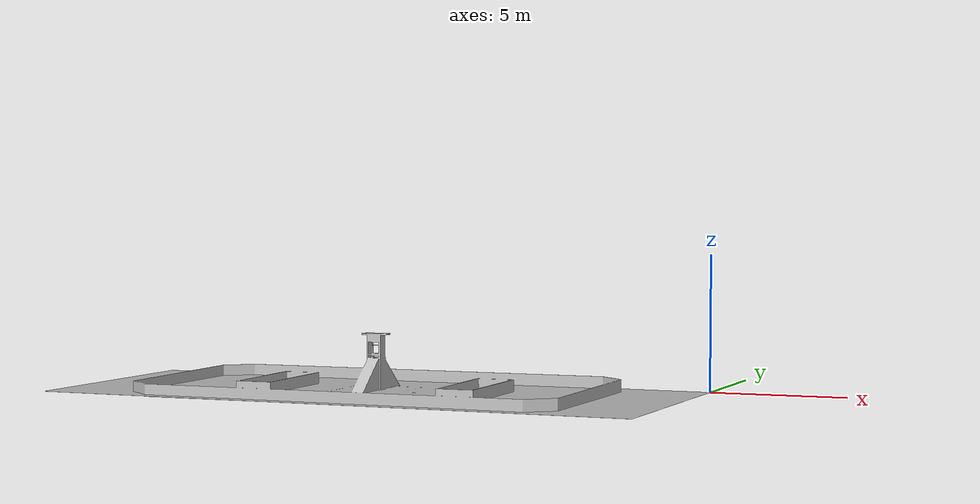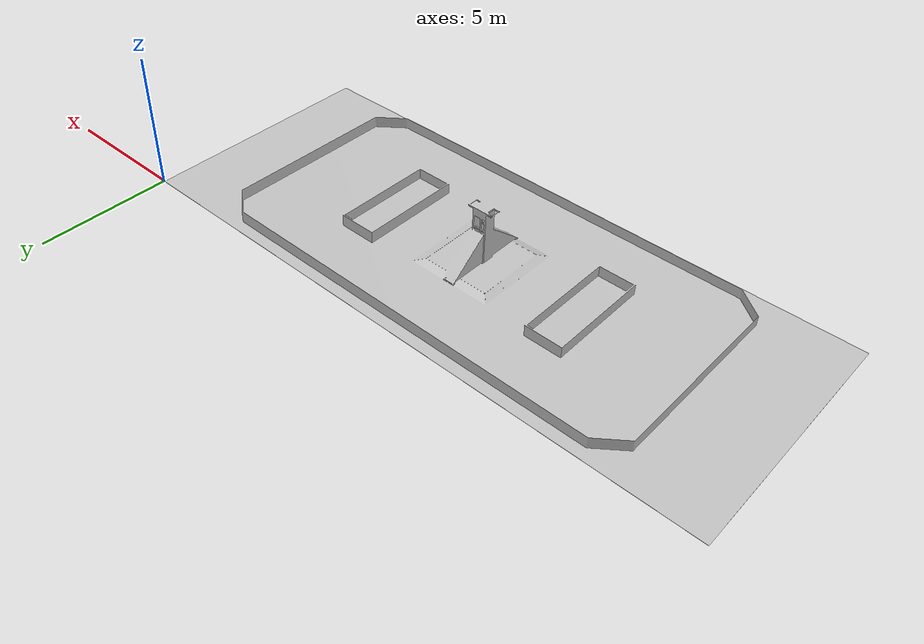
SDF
<?xml version="1.0" encoding="utf-8"?>
<sdf version="1.5">
  <model name="2018Field">
    <pose>0 0 0.00381000000000015 0 0 0</pose>
    <plugin name="clock" filename="libclock.so">
      <topic>/gazebo/frc/time</topic>
    </plugin>
    <link name="Field">
      <gravity>1</gravity>
      <self_collide>0</self_collide>
      <pose>-11.2322148764387 -4.57182951394293 0.158615289509543 1.56616420551451 0.00295731020805817 3.13003278368261</pose>
      <must_be_base_link>1</must_be_base_link>
      <velocity_decay>
        <linear>0</linear>
        <angular>0</angular>
      </velocity_decay>
      <inertial>
        <mass>1421.0362879402</mass>
        <pose>0 0 0 0 0 0</pose>
        <inertia>
          <ixx>9621.06411442907</ixx>
          <ixy>76.8615245699854</ixy>
          <ixz>201.31448744861</ixz>
          <iyy>32419.3172812761</iyy>
          <iyz>42.3346546040125</iyz>
          <izz>23187.0114779818</izz>
        </inertia>
      </inertial>
      <collision name="Field_collision">
        <pose>0.0367238764719841 -0.128865238216421 0.0239777029840934 0 0 0</pose>
        <geometry>
          <mesh>
            <scale>1 1 1</scale>
            <uri>model://2018Field/meshes/Field_col.STL</uri>
          </mesh>
        </geometry>
        <surface>
          <contact>
            <ode />
          </contact>
          <friction>
            <ode>
              <mu>1</mu>
              <mu2>1</mu2>
            </ode>
          </friction>
        </surface>
      </collision>
      <visual name="Field_visual">
        <pose>0.0367238764719841 -0.128865238216421 0.0239777029840934 0 0 0</pose>
        <material>
          <ambient>0.752941176470588 0.752941176470588 0.752941176470588 1</ambient>
          <diffuse>0.752941176470588 0.752941176470588 0.752941176470588 1</diffuse>
        </material>
        <geometry>
          <mesh>
            <scale>1 1 1</scale>
            <uri>model://2018Field/meshes/Field.STL</uri>
          </mesh>
        </geometry>
      </visual>
    </link>
    <joint name="Field-World" type="fixed">
      <parent>world</parent>
      <child>Field</child>
   </joint>

  </model>
</sdf>
